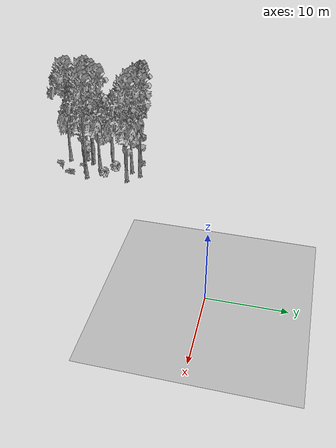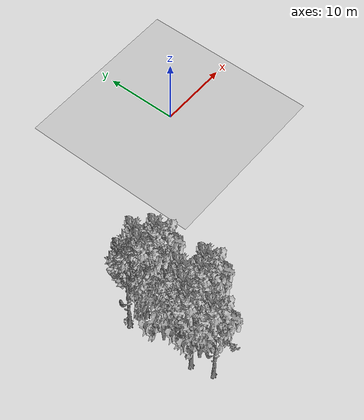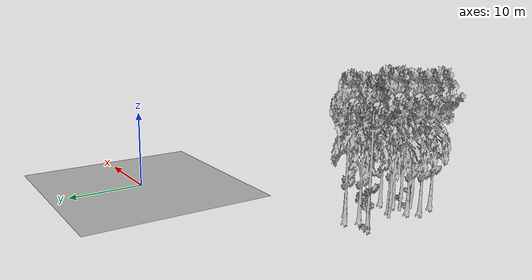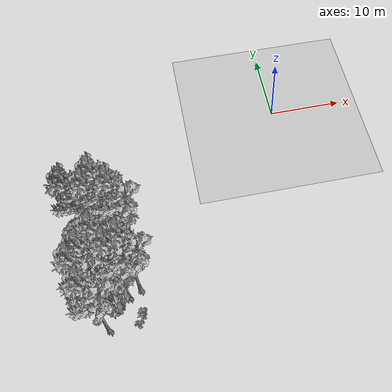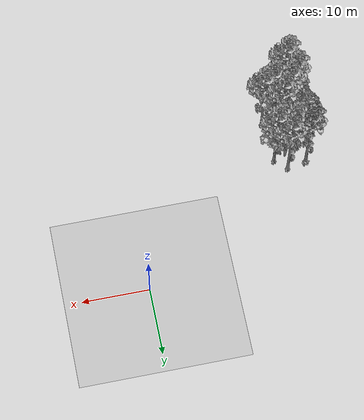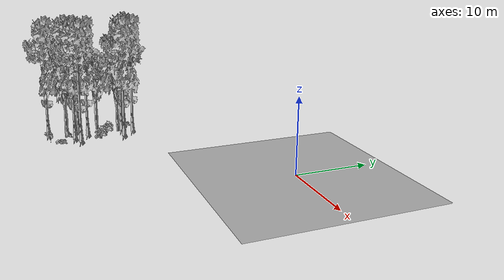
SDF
<sdf version="1.7">
 <world name="default">
  <model name="ground_plane">
   <static>1</static>
   <link name="link">
    <collision name="collision">
     <pose>-50 0 0 0 -0 0</pose>
     <geometry><plane><normal>0 0 1</normal><size>80 80</size></plane></geometry>
     <surface><contact><ode><min_depth>0.01</min_depth><max_vel>0</max_vel></ode></contact></surface>
    </collision>
    <visual name="grass">
     <cast_shadows>0</cast_shadows>
     <geometry>
      <mesh>
       <scale>0.46714285714285714 0.46714285714285714 0.1</scale>
       <uri>file://grass_plane/meshes/grass_plane.dae</uri>
      </mesh>
     </geometry>
    </visual>
   </link>
  </model>
  <model name="Tree 3">
   <static>1</static>
   <pose>-23.076699597023243 -23.677184721466134 0 1.57079 -0 0</pose>
   <link name="link">
    <collision name="collision">
     <geometry><mesh><scale>3.5 5 3.5</scale><uri>model://tree_9/meshes/tree_9.obj</uri></mesh></geometry>
    </collision>
    <visual name="visual">
     <geometry><mesh><scale>3.5 5 3.5</scale><uri>model://tree_9/meshes/tree_9.obj</uri></mesh></geometry>
    </visual>
   </link>
  </model>
  <model name="Tree 5">
   <static>1</static>
   <pose>-23.905515472704057 -15.00675875835298 0 1.57079 -0 0</pose>
   <link name="link">
    <collision name="collision">
     <geometry><mesh><scale>3.5 5 3.5</scale><uri>model://tree_9/meshes/tree_9.obj</uri></mesh></geometry>
    </collision>
    <visual name="visual">
     <geometry><mesh><scale>3.5 5 3.5</scale><uri>model://tree_9/meshes/tree_9.obj</uri></mesh></geometry>
    </visual>
   </link>
  </model>
  <model name="Tree 68">
   <static>1</static>
   <pose>-25.637526139210713 -23.353609698242916 0 1.57079 -0 0</pose>
   <link name="link">
    <collision name="collision">
     <geometry><mesh><scale>3.5 5 3.5</scale><uri>model://tree_9/meshes/tree_9.obj</uri></mesh></geometry>
    </collision>
    <visual name="visual">
     <geometry><mesh><scale>3.5 5 3.5</scale><uri>model://tree_9/meshes/tree_9.obj</uri></mesh></geometry>
    </visual>
   </link>
  </model>
  <model name="Tree 89">
   <static>1</static>
   <pose>-26.01348816353566 -20.06611375142552 0 1.57079 -0 0</pose>
   <link name="link">
    <collision name="collision">
     <geometry><mesh><scale>3.5 5 3.5</scale><uri>model://tree_2/meshes/tree_2.obj</uri></mesh></geometry>
    </collision>
    <visual name="visual">
     <geometry><mesh><scale>3.5 5 3.5</scale><uri>model://tree_2/meshes/tree_2.obj</uri></mesh></geometry>
    </visual>
   </link>
  </model>
  <model name="Tree 106">
   <static>1</static>
   <pose>-24.248613597437416 -21.66837134295335 0 1.57079 -0 0</pose>
   <link name="link">
    <collision name="collision">
     <geometry><mesh><scale>3.5 5 3.5</scale><uri>model://tree_9/meshes/tree_9.obj</uri></mesh></geometry>
    </collision>
    <visual name="visual">
     <geometry><mesh><scale>3.5 5 3.5</scale><uri>model://tree_9/meshes/tree_9.obj</uri></mesh></geometry>
    </visual>
   </link>
  </model>
  <model name="Tree 164">
   <static>1</static>
   <pose>-26.848264672207947 -15.746375966551547 0 1.57079 -0 0</pose>
   <link name="link">
    <collision name="collision">
     <geometry><mesh><scale>3.5 5 3.5</scale><uri>model://tree_9/meshes/tree_9.obj</uri></mesh></geometry>
    </collision>
    <visual name="visual">
     <geometry><mesh><scale>3.5 5 3.5</scale><uri>model://tree_9/meshes/tree_9.obj</uri></mesh></geometry>
    </visual>
   </link>
  </model>
  <model name="Tree 170">
   <static>1</static>
   <pose>-26.52351686643126 -24.524325221311987 0 1.57079 -0 0</pose>
   <link name="link">
    <collision name="collision">
     <geometry><mesh><scale>3.5 5 3.5</scale><uri>model://tree_9/meshes/tree_9.obj</uri></mesh></geometry>
    </collision>
    <visual name="visual">
     <geometry><mesh><scale>3.5 5 3.5</scale><uri>model://tree_9/meshes/tree_9.obj</uri></mesh></geometry>
    </visual>
   </link>
  </model>
  <model name="Tree 200">
   <static>1</static>
   <pose>-25.17764583909969 -24.601591501149276 0 1.57079 -0 0</pose>
   <link name="link">
    <collision name="collision">
     <geometry><mesh><scale>3.5 5 3.5</scale><uri>model://tree_2/meshes/tree_2.obj</uri></mesh></geometry>
    </collision>
    <visual name="visual">
     <geometry><mesh><scale>3.5 5 3.5</scale><uri>model://tree_2/meshes/tree_2.obj</uri></mesh></geometry>
    </visual>
   </link>
  </model>
  <model name="Tree 262">
   <static>1</static>
   <pose>-25.005359485579895 -22.889020669656475 0 1.57079 -0 0</pose>
   <link name="link">
    <collision name="collision">
     <geometry><mesh><scale>3.5 5 3.5</scale><uri>model://tree_2/meshes/tree_2.obj</uri></mesh></geometry>
    </collision>
    <visual name="visual">
     <geometry><mesh><scale>3.5 5 3.5</scale><uri>model://tree_2/meshes/tree_2.obj</uri></mesh></geometry>
    </visual>
   </link>
  </model>
  <model name="Tree 314">
   <static>1</static>
   <pose>-25.804580761270188 -27.202269731639177 0 1.57079 -0 0</pose>
   <link name="link">
    <collision name="collision">
     <geometry><mesh><scale>3.5 5 3.5</scale><uri>model://tree_9/meshes/tree_9.obj</uri></mesh></geometry>
    </collision>
    <visual name="visual">
     <geometry><mesh><scale>3.5 5 3.5</scale><uri>model://tree_9/meshes/tree_9.obj</uri></mesh></geometry>
    </visual>
   </link>
  </model>
  <model name="Tree 351">
   <static>1</static>
   <pose>-26.845540280947 -15.701382386761598 0 1.57079 -0 0</pose>
   <link name="link">
    <collision name="collision">
     <geometry><mesh><scale>3.5 5 3.5</scale><uri>model://tree_9/meshes/tree_9.obj</uri></mesh></geometry>
    </collision>
    <visual name="visual">
     <geometry><mesh><scale>3.5 5 3.5</scale><uri>model://tree_9/meshes/tree_9.obj</uri></mesh></geometry>
    </visual>
   </link>
  </model>
  <model name="Tree 358">
   <static>1</static>
   <pose>-21.652181036488617 -22.978249522432144 0 1.57079 -0 0</pose>
   <link name="link">
    <collision name="collision">
     <geometry><mesh><scale>3.5 5 3.5</scale><uri>model://tree_9/meshes/tree_9.obj</uri></mesh></geometry>
    </collision>
    <visual name="visual">
     <geometry><mesh><scale>3.5 5 3.5</scale><uri>model://tree_9/meshes/tree_9.obj</uri></mesh></geometry>
    </visual>
   </link>
  </model>
  <model name="Tree 461">
   <static>1</static>
   <pose>-24.652967602197474 -16.522457695018122 0 1.57079 -0 0</pose>
   <link name="link">
    <collision name="collision">
     <geometry><mesh><scale>3.5 5 3.5</scale><uri>model://tree_9/meshes/tree_9.obj</uri></mesh></geometry>
    </collision>
    <visual name="visual">
     <geometry><mesh><scale>3.5 5 3.5</scale><uri>model://tree_9/meshes/tree_9.obj</uri></mesh></geometry>
    </visual>
   </link>
  </model>
  <model name="Tree 498">
   <static>1</static>
   <pose>-24.055383184249315 -17.22621937537463 0 1.57079 -0 0</pose>
   <link name="link">
    <collision name="collision">
     <geometry><mesh><scale>3.5 5 3.5</scale><uri>model://tree_2/meshes/tree_2.obj</uri></mesh></geometry>
    </collision>
    <visual name="visual">
     <geometry><mesh><scale>3.5 5 3.5</scale><uri>model://tree_2/meshes/tree_2.obj</uri></mesh></geometry>
    </visual>
   </link>
  </model>
  <model name="Tree 632">
   <static>1</static>
   <pose>-22.162889458329737 -16.638429515769815 0 1.57079 -0 0</pose>
   <link name="link">
    <collision name="collision">
     <geometry><mesh><scale>3.5 5 3.5</scale><uri>model://tree_9/meshes/tree_9.obj</uri></mesh></geometry>
    </collision>
    <visual name="visual">
     <geometry><mesh><scale>3.5 5 3.5</scale><uri>model://tree_9/meshes/tree_9.obj</uri></mesh></geometry>
    </visual>
   </link>
  </model>
  <model name="Bush 56">
   <static>1</static>
   <pose>-24.208416568538013 -24.4937589437006 0 1.57079 -0 0</pose>
   <link name="link">
    <collision name="collision">
     <geometry><mesh><scale>2 2 2</scale><uri>model://bush_2/meshes/bush_2.obj</uri></mesh></geometry>
     <surface><contact><collide_without_contact>false</collide_without_contact></contact></surface>
    </collision>
    <visual name="visual">
     <geometry><mesh><scale>2 2 2</scale><uri>model://bush_2/meshes/bush_2.obj</uri></mesh></geometry>
    </visual>
   </link>
  </model>
  <model name="Bush 123">
   <static>1</static>
   <pose>-22.336233598531443 -20.4755622966847 0 1.57079 -0 0</pose>
   <link name="link">
    <collision name="collision">
     <geometry><mesh><scale>2 2 2</scale><uri>model://bush_2/meshes/bush_2.obj</uri></mesh></geometry>
     <surface><contact><collide_without_contact>false</collide_without_contact></contact></surface>
    </collision>
    <visual name="visual">
     <geometry><mesh><scale>2 2 2</scale><uri>model://bush_2/meshes/bush_2.obj</uri></mesh></geometry>
    </visual>
   </link>
  </model>
  <model name="Bush 222">
   <static>1</static>
   <pose>-23.4985040854703 -18.9417385668727 0 1.57079 -0 0</pose>
   <link name="link">
    <collision name="collision">
     <geometry><mesh><scale>2 2 2</scale><uri>model://bush_1/meshes/bush_1.obj</uri></mesh></geometry>
     <surface><contact><collide_without_contact>false</collide_without_contact></contact></surface>
    </collision>
    <visual name="visual">
     <geometry><mesh><scale>2 2 2</scale><uri>model://bush_1/meshes/bush_1.obj</uri></mesh></geometry>
    </visual>
   </link>
  </model>
  <model name="Bush 378">
   <static>1</static>
   <pose>-26.747407750022308 -15.378256784224291 0 1.57079 -0 0</pose>
   <link name="link">
    <collision name="collision">
     <geometry><mesh><scale>2 2 2</scale><uri>model://bush_2/meshes/bush_2.obj</uri></mesh></geometry>
     <surface><contact><collide_without_contact>false</collide_without_contact></contact></surface>
    </collision>
    <visual name="visual">
     <geometry><mesh><scale>2 2 2</scale><uri>model://bush_2/meshes/bush_2.obj</uri></mesh></geometry>
    </visual>
   </link>
  </model>
  <model name="Bush 447">
   <static>1</static>
   <pose>-21.779019377249664 -25.520720938563272 0 1.57079 -0 0</pose>
   <link name="link">
    <collision name="collision">
     <geometry><mesh><scale>2 2 2</scale><uri>model://bush_2/meshes/bush_2.obj</uri></mesh></geometry>
     <surface><contact><collide_without_contact>false</collide_without_contact></contact></surface>
    </collision>
    <visual name="visual">
     <geometry><mesh><scale>2 2 2</scale><uri>model://bush_2/meshes/bush_2.obj</uri></mesh></geometry>
    </visual>
   </link>
  </model>
  <model name="Bush 515">
   <static>1</static>
   <pose>-21.869516754775653 -26.064314827435844 0 1.57079 -0 0</pose>
   <link name="link">
    <collision name="collision">
     <geometry><mesh><scale>2 2 2</scale><uri>model://bush_2/meshes/bush_2.obj</uri></mesh></geometry>
     <surface><contact><collide_without_contact>false</collide_without_contact></contact></surface>
    </collision>
    <visual name="visual">
     <geometry><mesh><scale>2 2 2</scale><uri>model://bush_2/meshes/bush_2.obj</uri></mesh></geometry>
    </visual>
   </link>
  </model>
  <model name="Bush 554">
   <static>1</static>
   <pose>-21.54834784502033 -20.191347450861727 0 1.57079 -0 0</pose>
   <link name="link">
    <collision name="collision">
     <geometry><mesh><scale>2 2 2</scale><uri>model://bush_1/meshes/bush_1.obj</uri></mesh></geometry>
     <surface><contact><collide_without_contact>false</collide_without_contact></contact></surface>
    </collision>
    <visual name="visual">
     <geometry><mesh><scale>2 2 2</scale><uri>model://bush_1/meshes/bush_1.obj</uri></mesh></geometry>
    </visual>
   </link>
  </model>
  <model name="Bush 602">
   <static>1</static>
   <pose>-22.180249715590772 -27.182032808181038 0 1.57079 -0 0</pose>
   <link name="link">
    <collision name="collision">
     <geometry><mesh><scale>2 2 2</scale><uri>model://bush_5/meshes/bush_5.obj</uri></mesh></geometry>
     <surface><contact><collide_without_contact>false</collide_without_contact></contact></surface>
    </collision>
    <visual name="visual">
     <geometry><mesh><scale>2 2 2</scale><uri>model://bush_5/meshes/bush_5.obj</uri></mesh></geometry>
    </visual>
   </link>
  </model>
 </world>
</sdf>
